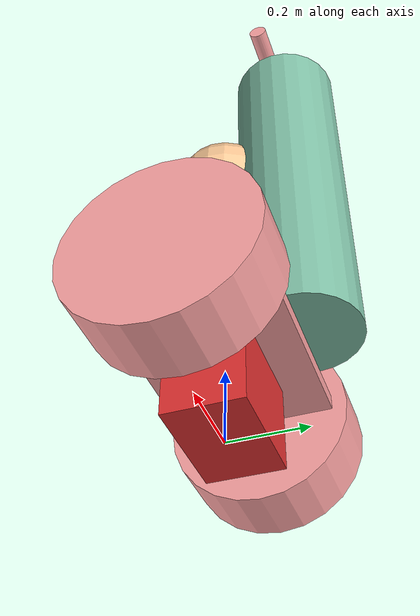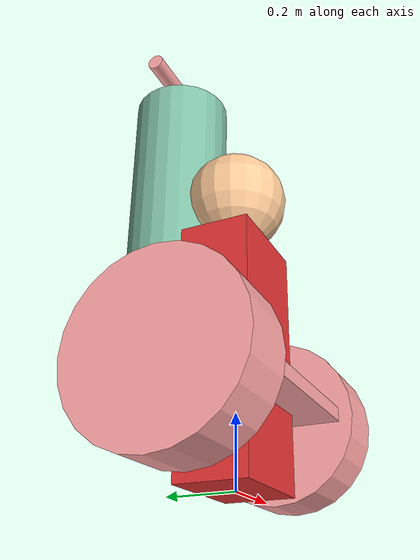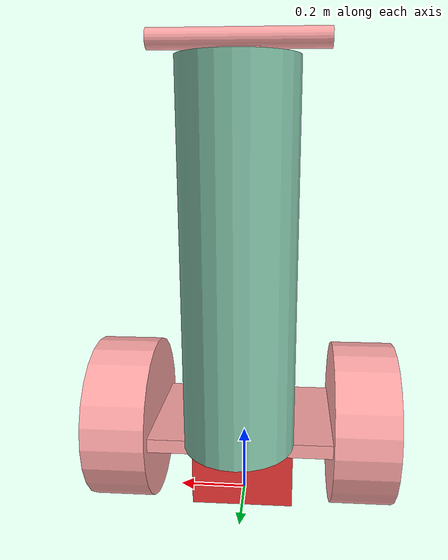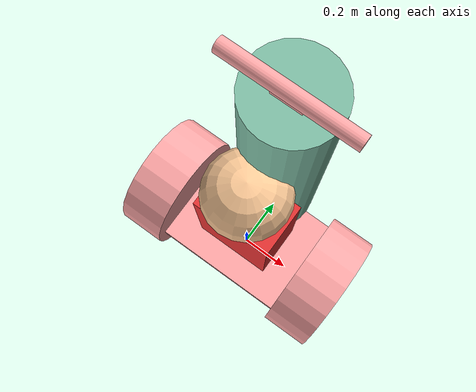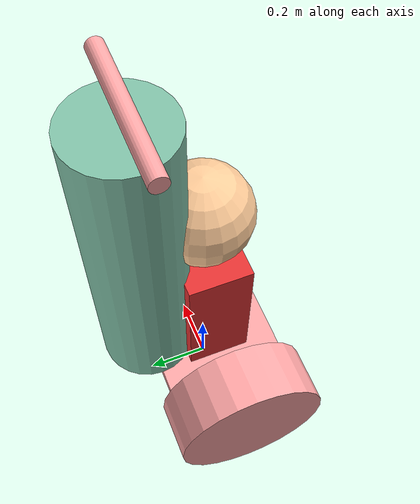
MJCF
<!-- 双轮差速高尔夫球车模型 -->
<!-- 尺寸：轮径48cm，轮宽18cm，轴长70cm，车把104cm，球包120cm -->
<!-- 质量：底盘37.8kg，车把5kg，球包10kg，车轮4.5kg×2，总重61.8kg -->
<mujoco model="balance">

    <compiler angle="radian"/>
    <size njmax="500" nconmax="100"/>
    <option gravity="0 0 -9.81" viscosity="0.002"/>

    <!-- 材质 -->
    <asset>
        <texture type="2d" name="wheel_texture" builtin="checker" mark="edge"
                 rgb1="1 1 1" rgb2="1 0.3 0.3"
                 markrgb="0.3 0.3 0.3" width="1024" height="1024"/>
        <material name="wheel_mat" texture="wheel_texture" texuniform="true" texrepeat="5 5"/>
        <texture type="2d" name="body_texture" builtin="gradient" rgb1="1 1 1"
                 rgb2="1 0.3 0.3" width="512" height="512"/>
        <material name="body_mat" texture="body_texture" texrepeat="4 2" shininess="0.3"/>
        <texture type="2d" name="bag_texture" builtin="gradient" rgb1="1 1 1"
                 rgb2="0 0.5 0.3" width="256" height="256"/>
        <material name="bag_mat" texture="bag_texture" texrepeat="4 2" shininess="0.3"/>
    </asset>

    <worldbody>

        <!-- 整车（轮轴中心离地0.24m） -->
        <body name="segway" pos="0 0 0.24">
            <joint name="segway_free" type="free" damping="0.05"/>

            <!-- 底盘（位于车轮中心高度） -->
            <body name="chassis" pos="0 0 0">
                <inertial pos="0.0 -0.08 0.0" quat="0.707107 0 0 0.707107"
                          mass="37.8" diaginertia="0.75 1.35 1.60"/>
                <geom type="box" size="0.35 0.20 0.02" material="body_mat"/>
            </body>

            <!-- 车把：长104cm，底部从轮轴稍上方开始 -->
            <body name="handlebar" pos="0 0 0.02">
                <inertial pos="0.0 0.0 0.0" quat="0.707107 0 0 0.707107"
                          mass="5.0" diaginertia="0.5 0.45 0.05"/>
                <geom type="box" size="0.051 0.016 0.52" pos="0 0.18 0.52" material="body_mat"/>
                <!-- 把手：圆柱体，水平横向，位于车把顶端 -->
                <geom type="cylinder" size="0.025 0.22" pos="0 0.18 1.04"
                      quat="0.707107 0 0.707107 0" material="body_mat"/>
                <!-- 模拟摄像机跟踪人 -->
                <geom type="sphere" size="0.03" pos="0 0.18 0.9" rgba="0 0 0 1" />

<!--             球包：高120cm，位于杆后方偏上-->
                <body name="golf_bag" pos="0 0.20 0.5">
                    <inertial pos="0 0 0" mass="10.0"
                              diaginertia="1.10 1.10 0.10"/>
                    <geom type="cylinder" size="0.15 0.5" material="bag_mat"/>
                </body>
            </body>

            <!-- 左轮：直径48cm，宽18cm，位置x=-0.35 -->
            <body name="l_wheel" pos="-0.35 0 0">
                <inertial pos="0 0 0" quat="0.5 0.5 -0.5 0.5"
                          mass="4.5" diaginertia="0.085 0.043 0.043"/>
                <joint name="torso_l_wheel" type="hinge" pos="0 0 0" axis="-1 0 0" damping="0.02"/>
                <geom type="cylinder" size="0.24 0.09" quat="0.707107 0 0.707107 0"
                      material="wheel_mat" contype="2" conaffinity="1" friction="2 1 0.8"/>
            </body>

            <!-- 右轮：直径48cm，宽18cm，位置x=0.35 -->
            <body name="r_wheel" pos="0.35 0 0">
                <inertial pos="0 0 0" quat="0.5 0.5 -0.5 0.5"
                          mass="4.5" diaginertia="0.085 0.043 0.043"/>
                <joint name="torso_r_wheel" type="hinge" pos="0 0 0" axis="-1 0 0" damping="0.02"/>
                <geom type="cylinder" size="0.24 0.09" quat="0.707107 0 0.707107 0"
                      material="wheel_mat" contype="2" conaffinity="1" friction="2 1 0.8"/>
            </body>
        </body>
        <body name="human" mocap="true">
            <!-- 身体：扁长方体，指向 +y 方向（前进方向） -->
            <geom type="box" size="0.15 0.1 0.35" pos="0 0 0.35" rgba="0.9 0.2 0.2 1"/>
            <!-- 头部 -->
            <geom type="sphere" size="0.15" pos="0 0 0.85" rgba="1 0.8 0.6 1"/>
        </body>
    </worldbody>

    <actuator>
        <!-- 电机 -->
        <motor name="motor_l_wheel" joint="torso_l_wheel" gear="1" ctrllimited="true" ctrlrange="-50 50"/>
        <motor name="motor_r_wheel" joint="torso_r_wheel" gear="1" ctrllimited="true" ctrlrange="-50 50"/>
    </actuator>

</mujoco>
